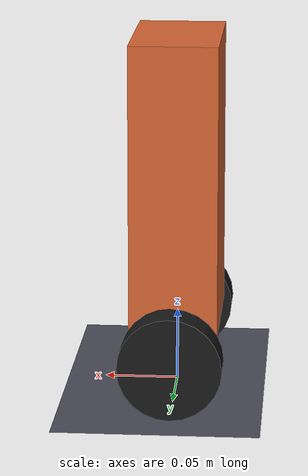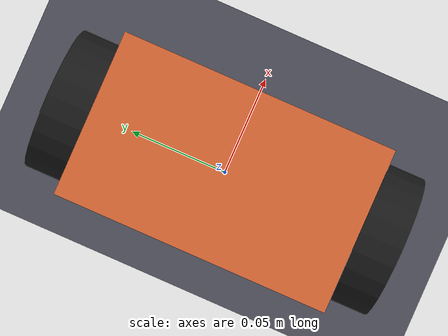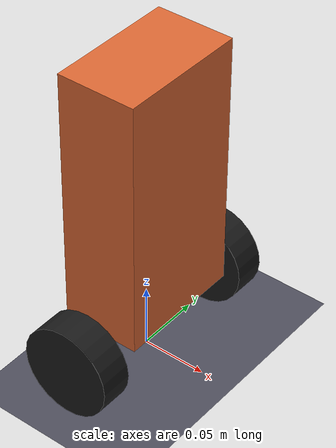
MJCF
<!--  TWO-WHEEL SELF-BALANCER  -  the "plant" (the physics model)  -->
<mujoco model="balancer">
  <compiler angle="radian" autolimits="true"/>

  <!-- 500 Hz physics. RK4 = accurate integrator, good for contact-light systems. -->
  <option timestep="0.002" integrator="RK4" gravity="0 0 -9.81"/>

  <default>
    <joint damping="0.001"/>
    <geom friction="1.0 0.005 0.0001"/>   <!-- sliding/torsional/rolling friction -->
  </default>

  <worldbody>
    <light pos="0 0 2"/>
    <geom name="floor" type="plane" size="0 0 0.05" rgba="0.3 0.3 0.35 1"/>

    <!-- ===================== THE ROBOT ===================== -->
    <!-- pos z = wheel radius, so the wheels start resting on the floor. -->
    <body name="chassis" pos="0 0 0.035">
      <freejoint name="root"/>

      <geom name="body" type="box" pos="0 0 0.11" size="0.03 0.05 0.10"
            mass="0.6" rgba="0.85 0.4 0.2 1"/>
      <!-- battery slung low (lowers CoM a touch, like a real pack near the base) -->
      <geom name="battery" type="box" pos="0 0 0.02" size="0.025 0.04 0.015"
            mass="0.15" rgba="0.15 0.15 0.15 1"/>

      <!-- IMU site: where we "mount" the gyro/accel. Up on the body. -->
      <site name="imu" pos="0 0 0.10" size="0.005" rgba="0 1 0 1"/>

      <!-- ===== LEFT WHEEL ===== (at +y) -->
      <body name="left_wheel" pos="0 0.075 0">
        <joint name="left" type="hinge" axis="0 1 0"/>
        <!-- cylinder's long axis aligned to y via zaxis, so it rolls about y -->
        <geom name="left_tire" type="cylinder" size="0.035 0.0125" zaxis="0 1 0"
              mass="0.05" rgba="0.1 0.1 0.1 1"/>
      </body>

      <!-- ===== RIGHT WHEEL ===== (at -y) -->
      <body name="right_wheel" pos="0 -0.075 0">
        <joint name="right" type="hinge" axis="0 1 0"/>
        <geom name="right_tire" type="cylinder" size="0.035 0.0125" zaxis="0 1 0"
              mass="0.05" rgba="0.1 0.1 0.1 1"/>
      </body>
    </body>
  </worldbody>

  <!-- ===================== MOTORS ===================== -->
  <actuator>
    <motor name="left_motor"  joint="left"  ctrlrange="-0.31 0.31"/>
    <motor name="right_motor" joint="right" ctrlrange="-0.31 0.31"/>
  </actuator>

  <!-- ===================== SENSORS ===================== -->
  <!-- This is your sensor suite, matching real hardware:
       - gyro + accelerometer = your IMU (MPU6050 etc.)
       - jointpos/jointvel on the wheels = your motor ENCODERS -->
  <sensor>
    <framequat   name="imu_quat" objtype="site" objname="imu"/>
    <gyro        name="imu_gyro" site="imu"/>
    <accelerometer name="imu_acc" site="imu"/>
    <jointpos name="left_enc"  joint="left"/>
    <jointpos name="right_enc" joint="right"/>
    <jointvel name="left_vel"  joint="left"/>
    <jointvel name="right_vel" joint="right"/>
  </sensor>
</mujoco>
